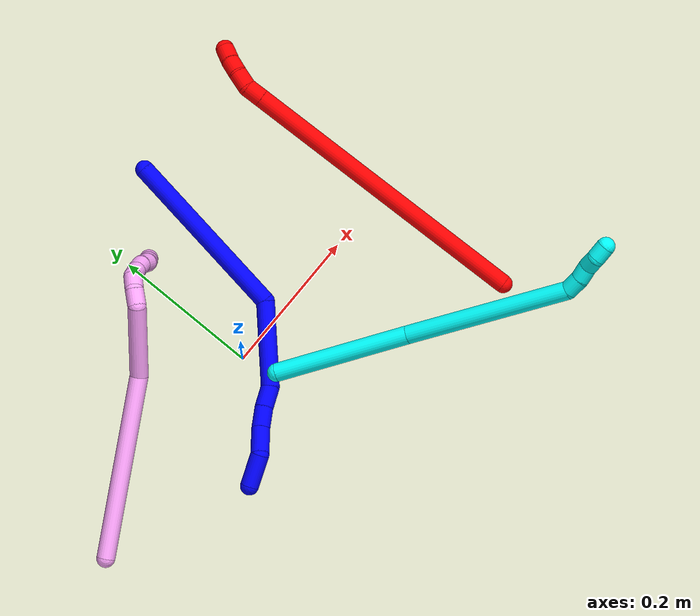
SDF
<sdf version="1.7">
 <world name="default">
  <plugin name="TubeGeneratorPlugin" filename="libtube_generator_plugin.so"/>
  <model name="photoneo_s_sensor">
   <static>1</static>
   <pose>0 0 2 1.57079 1.57079 3.14159</pose>
   <link name="link">
    <inertial><mass>0.1</mass></inertial>
    <sensor name="sensor" type="depth">
     <update_rate>30</update_rate>
     <camera>
      <horizontal_fov>1.22</horizontal_fov>
      <image><width>1920</width><height>1200</height><format>B8G8R8</format></image>
      <clip><near>0.1</near><far>4</far></clip>
      <depth_camera><output>points</output></depth_camera>
     </camera>
     <plugin name="camera_plugin" filename="libgazebo_ros_depth_camera.so">
      <baseline>0.2</baseline>
      <alwaysOn>1</alwaysOn>
      <updateRate>0.0</updateRate>
      <cameraName>camera_ir</cameraName>
      <imageTopicName>/camera/color/image_raw</imageTopicName>
      <cameraInfoTopicName>/camera/color/camera_info</cameraInfoTopicName>
      <depthImageTopicName>/camera/depth/image_raw</depthImageTopicName>
      <depthImageCameraInfoTopicName>/camera/depth/camera_info</depthImageCameraInfoTopicName>
      <pointCloudTopicName>/camera/depth/points</pointCloudTopicName>
      <frameName>fr_optical</frameName>
      <pointCloudCutoff>0.1</pointCloudCutoff>
      <pointCloudCutoffMax>2.0</pointCloudCutoffMax>
      <distortionK1>0</distortionK1>
      <distortionK2>0</distortionK2>
      <distortionK3>0</distortionK3>
      <distortionT1>0</distortionT1>
      <distortionT2>0</distortionT2>
      <CxPrime>0</CxPrime>
      <Cx>0</Cx>
      <Cy>0</Cy>
      <focalLength>0</focalLength>
      <hackBaseline>0</hackBaseline>
     </plugin>
    </sensor>
   </link>
  </model>
  <gravity>0 0 -9.8</gravity>
  <magnetic_field>6e-06 2.3e-05 -4.2e-05</magnetic_field>
  <atmosphere type="adiabatic"/>
  <physics name="default_physics" default="0" type="ode">
   <max_step_size>0.003</max_step_size>
   <real_time_factor>1</real_time_factor>
   <real_time_update_rate>1000</real_time_update_rate>
   <max_contacts>10000</max_contacts>
   <ode>
    <solver>
     <type>quick</type>
     <iters>100</iters>
     <sor>1.3</sor>
     <use_dynamic_moi_rescaling>0</use_dynamic_moi_rescaling>
    </solver>
    <constraints>
     <contact_max_correcting_vel>0</contact_max_correcting_vel>
     <contact_surface_layer>0.001</contact_surface_layer>
     <cfm>0</cfm>
     <erp>0.2</erp>
    </constraints>
   </ode>
  </physics>
  <scene><ambient>0.4 0.4 0.4 1</ambient><background>0.7 0.7 0.7 1</background><shadows>0</shadows></scene>
  <audio><device>default</device></audio>
  <spherical_coordinates>
   <surface_model>EARTH_WGS84</surface_model>
   <latitude_deg>0</latitude_deg>
   <longitude_deg>0</longitude_deg>
   <elevation>0</elevation>
   <heading_deg>0</heading_deg>
  </spherical_coordinates>
  <model name="bin">
   <static>1</static>
   <link name="bottom">
    <collision name="collision-bottom">
     <pose>0 0 -0.01 0 -0 0</pose>
     <geometry><box><size>0.8 0.6 0.02</size></box></geometry>
     <surface>
      <friction><ode><mu>100</mu><mu2>100</mu2></ode></friction>
      <contact><collide_bitmask>65535</collide_bitmask></contact>
     </surface>
    </collision>
   </link>
   <link name="west_wall">
    <collision name="collision-west_wall">
     <pose>-0.41 0 0.1 0 -0 0</pose>
     <geometry><box><size>0.02 0.6 0.2</size></box></geometry>
     <surface>
      <friction><ode><mu>100</mu><mu2>100</mu2></ode></friction>
      <contact><collide_bitmask>65535</collide_bitmask></contact>
     </surface>
    </collision>
   </link>
   <link name="east_wall">
    <collision name="collision-east_wall">
     <pose>0.41 0 0.1 0 -0 0</pose>
     <geometry><box><size>0.02 0.6 0.2</size></box></geometry>
     <surface>
      <friction><ode><mu>100</mu><mu2>100</mu2></ode></friction>
      <contact><collide_bitmask>65535</collide_bitmask></contact>
     </surface>
    </collision>
   </link>
   <link name="south_wall">
    <collision name="collision-south_wall">
     <pose>0 -0.31 0.1 0 -0 0</pose>
     <geometry><box><size>0.8 0.02 0.2</size></box></geometry>
     <surface>
      <friction><ode><mu>100</mu><mu2>100</mu2></ode></friction>
      <contact><collide_bitmask>65535</collide_bitmask></contact>
     </surface>
    </collision>
   </link>
   <link name="north_wall">
    <collision name="collision-north_wall">
     <pose>0 0.31 0.1 0 -0 0</pose>
     <geometry><box><size>0.8 0.02 0.2</size></box></geometry>
     <surface>
      <friction><ode><mu>100</mu><mu2>100</mu2></ode></friction>
      <contact><collide_bitmask>65535</collide_bitmask></contact>
     </surface>
    </collision>
   </link>
  </model>
  <model name="1">
   <static>0</static>
   <link name="1">
    <collision name="collision-cylinder-e_1_1_4">
     <pose>-0.022625 -0.108486 0.049113 1.14569 -0.187756 -0.121309</pose>
     <geometry><cylinder><radius>0.0125</radius><length>0.24243</length></cylinder></geometry>
     <surface>
      <friction><ode><mu>1.16</mu><mu2>1.16</mu2><slip1>0</slip1><slip2>0</slip2></ode></friction>
      <contact><ode><kp>1e+06</kp><kd>1</kd><max_vel>0</max_vel><min_depth>0.001</min_depth></ode></contact>
     </surface>
    </collision>
    <visual name="visual-cylinder-e_1_1_4">
     <pose>-0.022625 -0.108486 0.049113 1.14569 -0.187756 -0.121309</pose>
     <geometry><cylinder><radius>0.0125</radius><length>0.24243</length></cylinder></geometry>
     <material><ambient>0 0 1 1</ambient></material>
    </visual>
    <collision name="collision-cylinder-e_2_4_5">
     <pose>-0.083717 -0.259933 0.09606 1.62115 -0.729615 -0.763826</pose>
     <geometry><cylinder><radius>0.0125</radius><length>0.115413</length></cylinder></geometry>
     <surface>
      <friction><ode><mu>1.16</mu><mu2>1.16</mu2><slip1>0</slip1><slip2>0</slip2></ode></friction>
      <contact><ode><kp>1e+06</kp><kd>1</kd><max_vel>0</max_vel><min_depth>0.001</min_depth></ode></contact>
     </surface>
    </collision>
    <visual name="visual-cylinder-e_2_4_5">
     <pose>-0.083717 -0.259933 0.09606 1.62115 -0.729615 -0.763826</pose>
     <geometry><cylinder><radius>0.0125</radius><length>0.115413</length></cylinder></geometry>
     <material><ambient>0 0 1 1</ambient></material>
    </visual>
    <collision name="collision-cylinder-e_3_5_6">
     <pose>-0.135675 -0.309481 0.092331 1.80391 -1.10579 -1.3258</pose>
     <geometry><cylinder><radius>0.0125</radius><length>0.030189</length></cylinder></geometry>
     <surface>
      <friction><ode><mu>1.16</mu><mu2>1.16</mu2><slip1>0</slip1><slip2>0</slip2></ode></friction>
      <contact><ode><kp>1e+06</kp><kd>1</kd><max_vel>0</max_vel><min_depth>0.001</min_depth></ode></contact>
     </surface>
    </collision>
    <visual name="visual-cylinder-e_3_5_6">
     <pose>-0.135675 -0.309481 0.092331 1.80391 -1.10579 -1.3258</pose>
     <geometry><cylinder><radius>0.0125</radius><length>0.030189</length></cylinder></geometry>
     <material><ambient>0 0 1 1</ambient></material>
    </visual>
    <collision name="collision-cylinder-e_4_6_7">
     <pose>-0.161893 -0.323573 0.091131 1.5224 -1.03739 -0.996222</pose>
     <geometry><cylinder><radius>0.0125</radius><length>0.029559</length></cylinder></geometry>
     <surface>
      <friction><ode><mu>1.16</mu><mu2>1.16</mu2><slip1>0</slip1><slip2>0</slip2></ode></friction>
      <contact><ode><kp>1e+06</kp><kd>1</kd><max_vel>0</max_vel><min_depth>0.001</min_depth></ode></contact>
     </surface>
    </collision>
    <visual name="visual-cylinder-e_4_6_7">
     <pose>-0.161893 -0.323573 0.091131 1.5224 -1.03739 -0.996222</pose>
     <geometry><cylinder><radius>0.0125</radius><length>0.029559</length></cylinder></geometry>
     <material><ambient>0 0 1 1</ambient></material>
    </visual>
    <collision name="collision-cylinder-e_5_7_8">
     <pose>-0.190472 -0.340609 0.095177 1.20209 -0.998315 -0.715498</pose>
     <geometry><cylinder><radius>0.0125</radius><length>0.03772</length></cylinder></geometry>
     <surface>
      <friction><ode><mu>1.16</mu><mu2>1.16</mu2><slip1>0</slip1><slip2>0</slip2></ode></friction>
      <contact><ode><kp>1e+06</kp><kd>1</kd><max_vel>0</max_vel><min_depth>0.001</min_depth></ode></contact>
     </surface>
    </collision>
    <visual name="visual-cylinder-e_5_7_8">
     <pose>-0.190472 -0.340609 0.095177 1.20209 -0.998315 -0.715498</pose>
     <geometry><cylinder><radius>0.0125</radius><length>0.03772</length></cylinder></geometry>
     <material><ambient>0 0 1 1</ambient></material>
    </visual>
    <collision name="collision-cylinder-e_6_8_2">
     <pose>-0.22247 -0.362644 0.08979 2.19828 -0.807467 -1.39446</pose>
     <geometry><cylinder><radius>0.0125</radius><length>0.044689</length></cylinder></geometry>
     <surface>
      <friction><ode><mu>1.16</mu><mu2>1.16</mu2><slip1>0</slip1><slip2>0</slip2></ode></friction>
      <contact><ode><kp>1e+06</kp><kd>1</kd><max_vel>0</max_vel><min_depth>0.001</min_depth></ode></contact>
     </surface>
    </collision>
    <visual name="visual-cylinder-e_6_8_2">
     <pose>-0.22247 -0.362644 0.08979 2.19828 -0.807467 -1.39446</pose>
     <geometry><cylinder><radius>0.0125</radius><length>0.044689</length></cylinder></geometry>
     <material><ambient>0 0 1 1</ambient></material>
    </visual>
    <collision name="collision-sphere-2">
     <pose>-0.238614 -0.375149 0.080721 0 -0 0</pose>
     <geometry><sphere><radius>0.0125</radius></sphere></geometry>
     <surface>
      <friction><ode><mu>1.16</mu><mu2>1.16</mu2><slip1>0</slip1><slip2>0</slip2></ode></friction>
      <contact><ode><kp>1e+06</kp><kd>1</kd><max_vel>0</max_vel><min_depth>0.001</min_depth></ode></contact>
     </surface>
    </collision>
    <visual name="visual-sphere-2">
     <pose>-0.238614 -0.375149 0.080721 0 -0 0</pose>
     <geometry><sphere><radius>0.0125</radius></sphere></geometry>
     <material><ambient>0 0 1 1</ambient></material>
    </visual>
    <collision name="collision-sphere-4">
     <pose>-0.045251 -0.216971 0.098225 0 -0 0</pose>
     <geometry><sphere><radius>0.0125</radius></sphere></geometry>
     <surface>
      <friction><ode><mu>1.16</mu><mu2>1.16</mu2><slip1>0</slip1><slip2>0</slip2></ode></friction>
      <contact><ode><kp>1e+06</kp><kd>1</kd><max_vel>0</max_vel><min_depth>0.001</min_depth></ode></contact>
     </surface>
    </collision>
    <visual name="visual-sphere-4">
     <pose>-0.045251 -0.216971 0.098225 0 -0 0</pose>
     <geometry><sphere><radius>0.0125</radius></sphere></geometry>
     <material><ambient>0 0 1 1</ambient></material>
    </visual>
    <collision name="collision-sphere-1">
     <geometry><sphere><radius>0.0125</radius></sphere></geometry>
     <surface>
      <friction><ode><mu>1.16</mu><mu2>1.16</mu2><slip1>0</slip1><slip2>0</slip2></ode></friction>
      <contact><ode><kp>1e+06</kp><kd>1</kd><max_vel>0</max_vel><min_depth>0.001</min_depth></ode></contact>
     </surface>
    </collision>
    <visual name="visual-sphere-1">
     <geometry><sphere><radius>0.0125</radius></sphere></geometry>
     <material><ambient>0 0 1 1</ambient></material>
    </visual>
    <collision name="collision-sphere-8">
     <pose>-0.206325 -0.350139 0.098859 0 -0 0</pose>
     <geometry><sphere><radius>0.0125</radius></sphere></geometry>
     <surface>
      <friction><ode><mu>1.16</mu><mu2>1.16</mu2><slip1>0</slip1><slip2>0</slip2></ode></friction>
      <contact><ode><kp>1e+06</kp><kd>1</kd><max_vel>0</max_vel><min_depth>0.001</min_depth></ode></contact>
     </surface>
    </collision>
    <visual name="visual-sphere-8">
     <pose>-0.206325 -0.350139 0.098859 0 -0 0</pose>
     <geometry><sphere><radius>0.0125</radius></sphere></geometry>
     <material><ambient>0 0 1 1</ambient></material>
    </visual>
    <collision name="collision-sphere-5">
     <pose>-0.122183 -0.302895 0.093895 0 -0 0</pose>
     <geometry><sphere><radius>0.0125</radius></sphere></geometry>
     <surface>
      <friction><ode><mu>1.16</mu><mu2>1.16</mu2><slip1>0</slip1><slip2>0</slip2></ode></friction>
      <contact><ode><kp>1e+06</kp><kd>1</kd><max_vel>0</max_vel><min_depth>0.001</min_depth></ode></contact>
     </surface>
    </collision>
    <visual name="visual-sphere-5">
     <pose>-0.122183 -0.302895 0.093895 0 -0 0</pose>
     <geometry><sphere><radius>0.0125</radius></sphere></geometry>
     <material><ambient>0 0 1 1</ambient></material>
    </visual>
    <collision name="collision-sphere-6">
     <pose>-0.149166 -0.316066 0.090768 0 -0 0</pose>
     <geometry><sphere><radius>0.0125</radius></sphere></geometry>
     <surface>
      <friction><ode><mu>1.16</mu><mu2>1.16</mu2><slip1>0</slip1><slip2>0</slip2></ode></friction>
      <contact><ode><kp>1e+06</kp><kd>1</kd><max_vel>0</max_vel><min_depth>0.001</min_depth></ode></contact>
     </surface>
    </collision>
    <visual name="visual-sphere-6">
     <pose>-0.149166 -0.316066 0.090768 0 -0 0</pose>
     <geometry><sphere><radius>0.0125</radius></sphere></geometry>
     <material><ambient>0 0 1 1</ambient></material>
    </visual>
    <collision name="collision-sphere-7">
     <pose>-0.174619 -0.331079 0.091495 0 -0 0</pose>
     <geometry><sphere><radius>0.0125</radius></sphere></geometry>
     <surface>
      <friction><ode><mu>1.16</mu><mu2>1.16</mu2><slip1>0</slip1><slip2>0</slip2></ode></friction>
      <contact><ode><kp>1e+06</kp><kd>1</kd><max_vel>0</max_vel><min_depth>0.001</min_depth></ode></contact>
     </surface>
    </collision>
    <visual name="visual-sphere-7">
     <pose>-0.174619 -0.331079 0.091495 0 -0 0</pose>
     <geometry><sphere><radius>0.0125</radius></sphere></geometry>
     <material><ambient>0 0 1 1</ambient></material>
    </visual>
    <inertial>
     <pose>-0.08231 -0.208522 0.072154 0 -0 0</pose>
     <mass>0.5</mass>
     <inertia>
      <ixx>0.001003</ixx>
      <ixy>0</ixy>
      <ixz>0</ixz>
      <iyy>0.000334</iyy>
      <iyz>0</iyz>
      <izz>0.001517</izz>
     </inertia>
    </inertial>
   </link>
   <pose>0.112613 0.265127 0.011728 0.50761 0.488706 0.061072</pose>
  </model>
  <model name="2">
   <static>0</static>
   <link name="2">
    <collision name="collision-cylinder-e_1_1_4">
     <pose>0.078316 0.119963 0.145941 -0.68801 0.392986 -0.142386</pose>
     <geometry><cylinder><radius>0.0125</radius><length>0.409015</length></cylinder></geometry>
     <surface>
      <friction><ode><mu>1.16</mu><mu2>1.16</mu2><slip1>0</slip1><slip2>0</slip2></ode></friction>
      <contact><ode><kp>1e+06</kp><kd>1</kd><max_vel>0</max_vel><min_depth>0.001</min_depth></ode></contact>
     </surface>
    </collision>
    <visual name="visual-cylinder-e_1_1_4">
     <pose>0.078316 0.119963 0.145941 -0.68801 0.392986 -0.142386</pose>
     <geometry><cylinder><radius>0.0125</radius><length>0.409015</length></cylinder></geometry>
     <material><ambient>1 0 0 1</ambient></material>
    </visual>
    <collision name="collision-cylinder-e_2_4_5">
     <pose>0.161136 0.246839 0.3004 -0.681717 0.389623 -0.139748</pose>
     <geometry><cylinder><radius>0.0125</radius><length>0.023717</length></cylinder></geometry>
     <surface>
      <friction><ode><mu>1.16</mu><mu2>1.16</mu2><slip1>0</slip1><slip2>0</slip2></ode></friction>
      <contact><ode><kp>1e+06</kp><kd>1</kd><max_vel>0</max_vel><min_depth>0.001</min_depth></ode></contact>
     </surface>
    </collision>
    <visual name="visual-cylinder-e_2_4_5">
     <pose>0.161136 0.246839 0.3004 -0.681717 0.389623 -0.139748</pose>
     <geometry><cylinder><radius>0.0125</radius><length>0.023717</length></cylinder></geometry>
     <material><ambient>1 0 0 1</ambient></material>
    </visual>
    <collision name="collision-cylinder-e_3_5_6">
     <pose>0.166489 0.263468 0.315583 -0.969621 0.071901 -0.037885</pose>
     <geometry><cylinder><radius>0.0125</radius><length>0.023628</length></cylinder></geometry>
     <surface>
      <friction><ode><mu>1.16</mu><mu2>1.16</mu2><slip1>0</slip1><slip2>0</slip2></ode></friction>
      <contact><ode><kp>1e+06</kp><kd>1</kd><max_vel>0</max_vel><min_depth>0.001</min_depth></ode></contact>
     </surface>
    </collision>
    <visual name="visual-cylinder-e_3_5_6">
     <pose>0.166489 0.263468 0.315583 -0.969621 0.071901 -0.037885</pose>
     <geometry><cylinder><radius>0.0125</radius><length>0.023628</length></cylinder></geometry>
     <material><ambient>1 0 0 1</ambient></material>
    </visual>
    <collision name="collision-cylinder-e_4_6_7">
     <pose>0.165455 0.281853 0.328454 -0.949323 -0.174854 0.090016</pose>
     <geometry><cylinder><radius>0.0125</radius><length>0.02165</length></cylinder></geometry>
     <surface>
      <friction><ode><mu>1.16</mu><mu2>1.16</mu2><slip1>0</slip1><slip2>0</slip2></ode></friction>
      <contact><ode><kp>1e+06</kp><kd>1</kd><max_vel>0</max_vel><min_depth>0.001</min_depth></ode></contact>
     </surface>
    </collision>
    <visual name="visual-cylinder-e_4_6_7">
     <pose>0.165455 0.281853 0.328454 -0.949323 -0.174854 0.090016</pose>
     <geometry><cylinder><radius>0.0125</radius><length>0.02165</length></cylinder></geometry>
     <material><ambient>1 0 0 1</ambient></material>
    </visual>
    <collision name="collision-cylinder-e_5_7_2">
     <pose>0.160349 0.29955 0.340041 -1.0335 -0.297424 0.16986</pose>
     <geometry><cylinder><radius>0.0125</radius><length>0.02199</length></cylinder></geometry>
     <surface>
      <friction><ode><mu>1.16</mu><mu2>1.16</mu2><slip1>0</slip1><slip2>0</slip2></ode></friction>
      <contact><ode><kp>1e+06</kp><kd>1</kd><max_vel>0</max_vel><min_depth>0.001</min_depth></ode></contact>
     </surface>
    </collision>
    <visual name="visual-cylinder-e_5_7_2">
     <pose>0.160349 0.29955 0.340041 -1.0335 -0.297424 0.16986</pose>
     <geometry><cylinder><radius>0.0125</radius><length>0.02199</length></cylinder></geometry>
     <material><ambient>1 0 0 1</ambient></material>
    </visual>
    <collision name="collision-sphere-2">
     <pose>0.157127 0.308581 0.345422 0 -0 0</pose>
     <geometry><sphere><radius>0.0125</radius></sphere></geometry>
     <surface>
      <friction><ode><mu>1.16</mu><mu2>1.16</mu2><slip1>0</slip1><slip2>0</slip2></ode></friction>
      <contact><ode><kp>1e+06</kp><kd>1</kd><max_vel>0</max_vel><min_depth>0.001</min_depth></ode></contact>
     </surface>
    </collision>
    <visual name="visual-sphere-2">
     <pose>0.157127 0.308581 0.345422 0 -0 0</pose>
     <geometry><sphere><radius>0.0125</radius></sphere></geometry>
     <material><ambient>1 0 0 1</ambient></material>
    </visual>
    <collision name="collision-sphere-7">
     <pose>0.163571 0.290519 0.334661 0 -0 0</pose>
     <geometry><sphere><radius>0.0125</radius></sphere></geometry>
     <surface>
      <friction><ode><mu>1.16</mu><mu2>1.16</mu2><slip1>0</slip1><slip2>0</slip2></ode></friction>
      <contact><ode><kp>1e+06</kp><kd>1</kd><max_vel>0</max_vel><min_depth>0.001</min_depth></ode></contact>
     </surface>
    </collision>
    <visual name="visual-sphere-7">
     <pose>0.163571 0.290519 0.334661 0 -0 0</pose>
     <geometry><sphere><radius>0.0125</radius></sphere></geometry>
     <material><ambient>1 0 0 1</ambient></material>
    </visual>
    <collision name="collision-sphere-6">
     <pose>0.167338 0.273186 0.322248 0 -0 0</pose>
     <geometry><sphere><radius>0.0125</radius></sphere></geometry>
     <surface>
      <friction><ode><mu>1.16</mu><mu2>1.16</mu2><slip1>0</slip1><slip2>0</slip2></ode></friction>
      <contact><ode><kp>1e+06</kp><kd>1</kd><max_vel>0</max_vel><min_depth>0.001</min_depth></ode></contact>
     </surface>
    </collision>
    <visual name="visual-sphere-6">
     <pose>0.167338 0.273186 0.322248 0 -0 0</pose>
     <geometry><sphere><radius>0.0125</radius></sphere></geometry>
     <material><ambient>1 0 0 1</ambient></material>
    </visual>
    <collision name="collision-sphere-5">
     <pose>0.16564 0.253751 0.308918 0 -0 0</pose>
     <geometry><sphere><radius>0.0125</radius></sphere></geometry>
     <surface>
      <friction><ode><mu>1.16</mu><mu2>1.16</mu2><slip1>0</slip1><slip2>0</slip2></ode></friction>
      <contact><ode><kp>1e+06</kp><kd>1</kd><max_vel>0</max_vel><min_depth>0.001</min_depth></ode></contact>
     </surface>
    </collision>
    <visual name="visual-sphere-5">
     <pose>0.16564 0.253751 0.308918 0 -0 0</pose>
     <geometry><sphere><radius>0.0125</radius></sphere></geometry>
     <material><ambient>1 0 0 1</ambient></material>
    </visual>
    <collision name="collision-sphere-1">
     <geometry><sphere><radius>0.0125</radius></sphere></geometry>
     <surface>
      <friction><ode><mu>1.16</mu><mu2>1.16</mu2><slip1>0</slip1><slip2>0</slip2></ode></friction>
      <contact><ode><kp>1e+06</kp><kd>1</kd><max_vel>0</max_vel><min_depth>0.001</min_depth></ode></contact>
     </surface>
    </collision>
    <visual name="visual-sphere-1">
     <geometry><sphere><radius>0.0125</radius></sphere></geometry>
     <material><ambient>1 0 0 1</ambient></material>
    </visual>
    <collision name="collision-sphere-4">
     <pose>0.156632 0.239926 0.291883 0 -0 0</pose>
     <geometry><sphere><radius>0.0125</radius></sphere></geometry>
     <surface>
      <friction><ode><mu>1.16</mu><mu2>1.16</mu2><slip1>0</slip1><slip2>0</slip2></ode></friction>
      <contact><ode><kp>1e+06</kp><kd>1</kd><max_vel>0</max_vel><min_depth>0.001</min_depth></ode></contact>
     </surface>
    </collision>
    <visual name="visual-sphere-4">
     <pose>0.156632 0.239926 0.291883 0 -0 0</pose>
     <geometry><sphere><radius>0.0125</radius></sphere></geometry>
     <material><ambient>1 0 0 1</ambient></material>
    </visual>
    <inertial>
     <pose>0.093792 0.147671 0.177724 0 -0 0</pose>
     <mass>0.5</mass>
     <inertia>
      <ixx>0.004499</ixx>
      <ixy>0</ixy>
      <ixz>0</ixz>
      <iyy>0.003849</iyy>
      <iyz>0</iyz>
      <izz>-0.005523</izz>
     </inertia>
    </inertial>
   </link>
   <pose>0.299308 -0.205978 0.012246 3.09335 -1.20713 2.28841</pose>
  </model>
  <model name="3">
   <static>0</static>
   <link name="3">
    <collision name="collision-cylinder-e_1_1_4">
     <pose>0.022918 0.012886 0.089622 -0.142801 0.247907 -0.017822</pose>
     <geometry><cylinder><radius>0.0125</radius><length>0.186798</length></cylinder></geometry>
     <surface>
      <friction><ode><mu>1.16</mu><mu2>1.16</mu2><slip1>0</slip1><slip2>0</slip2></ode></friction>
      <contact><ode><kp>1e+06</kp><kd>1</kd><max_vel>0</max_vel><min_depth>0.001</min_depth></ode></contact>
     </surface>
    </collision>
    <visual name="visual-cylinder-e_1_1_4">
     <pose>0.022918 0.012886 0.089622 -0.142801 0.247907 -0.017822</pose>
     <geometry><cylinder><radius>0.0125</radius><length>0.186798</length></cylinder></geometry>
     <material><ambient>0.003922 1 0.996078 1</ambient></material>
    </visual>
    <collision name="collision-cylinder-e_2_4_5">
     <pose>0.08208 0.03314 0.287779 -0.067789 0.321607 -0.011</pose>
     <geometry><cylinder><radius>0.0125</radius><length>0.229326</length></cylinder></geometry>
     <surface>
      <friction><ode><mu>1.16</mu><mu2>1.16</mu2><slip1>0</slip1><slip2>0</slip2></ode></friction>
      <contact><ode><kp>1e+06</kp><kd>1</kd><max_vel>0</max_vel><min_depth>0.001</min_depth></ode></contact>
     </surface>
    </collision>
    <visual name="visual-cylinder-e_2_4_5">
     <pose>0.08208 0.03314 0.287779 -0.067789 0.321607 -0.011</pose>
     <geometry><cylinder><radius>0.0125</radius><length>0.229326</length></cylinder></geometry>
     <material><ambient>0.003922 1 0.996078 1</ambient></material>
    </visual>
    <collision name="collision-cylinder-e_3_5_6">
     <pose>0.118914 0.036467 0.407229 0.354601 0.050624 0.009073</pose>
     <geometry><cylinder><radius>0.0125</radius><length>0.023311</length></cylinder></geometry>
     <surface>
      <friction><ode><mu>1.16</mu><mu2>1.16</mu2><slip1>0</slip1><slip2>0</slip2></ode></friction>
      <contact><ode><kp>1e+06</kp><kd>1</kd><max_vel>0</max_vel><min_depth>0.001</min_depth></ode></contact>
     </surface>
    </collision>
    <visual name="visual-cylinder-e_3_5_6">
     <pose>0.118914 0.036467 0.407229 0.354601 0.050624 0.009073</pose>
     <geometry><cylinder><radius>0.0125</radius><length>0.023311</length></cylinder></geometry>
     <material><ambient>0.003922 1 0.996078 1</ambient></material>
    </visual>
    <collision name="collision-cylinder-e_4_6_7">
     <pose>0.118436 0.027695 0.427051 0.488253 -0.105452 -0.02629</pose>
     <geometry><cylinder><radius>0.0125</radius><length>0.020279</length></cylinder></geometry>
     <surface>
      <friction><ode><mu>1.16</mu><mu2>1.16</mu2><slip1>0</slip1><slip2>0</slip2></ode></friction>
      <contact><ode><kp>1e+06</kp><kd>1</kd><max_vel>0</max_vel><min_depth>0.001</min_depth></ode></contact>
     </surface>
    </collision>
    <visual name="visual-cylinder-e_4_6_7">
     <pose>0.118436 0.027695 0.427051 0.488253 -0.105452 -0.02629</pose>
     <geometry><cylinder><radius>0.0125</radius><length>0.020279</length></cylinder></geometry>
     <material><ambient>0.003922 1 0.996078 1</ambient></material>
    </visual>
    <collision name="collision-cylinder-e_5_7_8">
     <pose>0.119926 0.017549 0.444051 0.589672 0.256699 0.078347</pose>
     <geometry><cylinder><radius>0.0125</radius><length>0.020139</length></cylinder></geometry>
     <surface>
      <friction><ode><mu>1.16</mu><mu2>1.16</mu2><slip1>0</slip1><slip2>0</slip2></ode></friction>
      <contact><ode><kp>1e+06</kp><kd>1</kd><max_vel>0</max_vel><min_depth>0.001</min_depth></ode></contact>
     </surface>
    </collision>
    <visual name="visual-cylinder-e_5_7_8">
     <pose>0.119926 0.017549 0.444051 0.589672 0.256699 0.078347</pose>
     <geometry><cylinder><radius>0.0125</radius><length>0.020139</length></cylinder></geometry>
     <material><ambient>0.003922 1 0.996078 1</ambient></material>
    </visual>
    <collision name="collision-cylinder-e_6_8_2">
     <pose>0.121162 0.009116 0.461665 0.307 -0.131434 -0.020364</pose>
     <geometry><cylinder><radius>0.0125</radius><length>0.020145</length></cylinder></geometry>
     <surface>
      <friction><ode><mu>1.16</mu><mu2>1.16</mu2><slip1>0</slip1><slip2>0</slip2></ode></friction>
      <contact><ode><kp>1e+06</kp><kd>1</kd><max_vel>0</max_vel><min_depth>0.001</min_depth></ode></contact>
     </surface>
    </collision>
    <visual name="visual-cylinder-e_6_8_2">
     <pose>0.121162 0.009116 0.461665 0.307 -0.131434 -0.020364</pose>
     <geometry><cylinder><radius>0.0125</radius><length>0.020145</length></cylinder></geometry>
     <material><ambient>0.003922 1 0.996078 1</ambient></material>
    </visual>
    <collision name="collision-sphere-2">
     <pose>0.119842 0.006098 0.471184 0 -0 0</pose>
     <geometry><sphere><radius>0.0125</radius></sphere></geometry>
     <surface>
      <friction><ode><mu>1.16</mu><mu2>1.16</mu2><slip1>0</slip1><slip2>0</slip2></ode></friction>
      <contact><ode><kp>1e+06</kp><kd>1</kd><max_vel>0</max_vel><min_depth>0.001</min_depth></ode></contact>
     </surface>
    </collision>
    <visual name="visual-sphere-2">
     <pose>0.119842 0.006098 0.471184 0 -0 0</pose>
     <geometry><sphere><radius>0.0125</radius></sphere></geometry>
     <material><ambient>0.003922 1 0.996078 1</ambient></material>
    </visual>
    <collision name="collision-sphere-4">
     <pose>0.045836 0.025772 0.179244 0 -0 0</pose>
     <geometry><sphere><radius>0.0125</radius></sphere></geometry>
     <surface>
      <friction><ode><mu>1.16</mu><mu2>1.16</mu2><slip1>0</slip1><slip2>0</slip2></ode></friction>
      <contact><ode><kp>1e+06</kp><kd>1</kd><max_vel>0</max_vel><min_depth>0.001</min_depth></ode></contact>
     </surface>
    </collision>
    <visual name="visual-sphere-4">
     <pose>0.045836 0.025772 0.179244 0 -0 0</pose>
     <geometry><sphere><radius>0.0125</radius></sphere></geometry>
     <material><ambient>0.003922 1 0.996078 1</ambient></material>
    </visual>
    <collision name="collision-sphere-1">
     <geometry><sphere><radius>0.0125</radius></sphere></geometry>
     <surface>
      <friction><ode><mu>1.16</mu><mu2>1.16</mu2><slip1>0</slip1><slip2>0</slip2></ode></friction>
      <contact><ode><kp>1e+06</kp><kd>1</kd><max_vel>0</max_vel><min_depth>0.001</min_depth></ode></contact>
     </surface>
    </collision>
    <visual name="visual-sphere-1">
     <geometry><sphere><radius>0.0125</radius></sphere></geometry>
     <material><ambient>0.003922 1 0.996078 1</ambient></material>
    </visual>
    <collision name="collision-sphere-8">
     <pose>0.122482 0.012133 0.452146 0 -0 0</pose>
     <geometry><sphere><radius>0.0125</radius></sphere></geometry>
     <surface>
      <friction><ode><mu>1.16</mu><mu2>1.16</mu2><slip1>0</slip1><slip2>0</slip2></ode></friction>
      <contact><ode><kp>1e+06</kp><kd>1</kd><max_vel>0</max_vel><min_depth>0.001</min_depth></ode></contact>
     </surface>
    </collision>
    <visual name="visual-sphere-8">
     <pose>0.122482 0.012133 0.452146 0 -0 0</pose>
     <geometry><sphere><radius>0.0125</radius></sphere></geometry>
     <material><ambient>0.003922 1 0.996078 1</ambient></material>
    </visual>
    <collision name="collision-sphere-5">
     <pose>0.118324 0.040509 0.396313 0 -0 0</pose>
     <geometry><sphere><radius>0.0125</radius></sphere></geometry>
     <surface>
      <friction><ode><mu>1.16</mu><mu2>1.16</mu2><slip1>0</slip1><slip2>0</slip2></ode></friction>
      <contact><ode><kp>1e+06</kp><kd>1</kd><max_vel>0</max_vel><min_depth>0.001</min_depth></ode></contact>
     </surface>
    </collision>
    <visual name="visual-sphere-5">
     <pose>0.118324 0.040509 0.396313 0 -0 0</pose>
     <geometry><sphere><radius>0.0125</radius></sphere></geometry>
     <material><ambient>0.003922 1 0.996078 1</ambient></material>
    </visual>
    <collision name="collision-sphere-6">
     <pose>0.119503 0.032425 0.418146 0 -0 0</pose>
     <geometry><sphere><radius>0.0125</radius></sphere></geometry>
     <surface>
      <friction><ode><mu>1.16</mu><mu2>1.16</mu2><slip1>0</slip1><slip2>0</slip2></ode></friction>
      <contact><ode><kp>1e+06</kp><kd>1</kd><max_vel>0</max_vel><min_depth>0.001</min_depth></ode></contact>
     </surface>
    </collision>
    <visual name="visual-sphere-6">
     <pose>0.119503 0.032425 0.418146 0 -0 0</pose>
     <geometry><sphere><radius>0.0125</radius></sphere></geometry>
     <material><ambient>0.003922 1 0.996078 1</ambient></material>
    </visual>
    <collision name="collision-sphere-7">
     <pose>0.117369 0.022966 0.435956 0 -0 0</pose>
     <geometry><sphere><radius>0.0125</radius></sphere></geometry>
     <surface>
      <friction><ode><mu>1.16</mu><mu2>1.16</mu2><slip1>0</slip1><slip2>0</slip2></ode></friction>
      <contact><ode><kp>1e+06</kp><kd>1</kd><max_vel>0</max_vel><min_depth>0.001</min_depth></ode></contact>
     </surface>
    </collision>
    <visual name="visual-sphere-7">
     <pose>0.117369 0.022966 0.435956 0 -0 0</pose>
     <geometry><sphere><radius>0.0125</radius></sphere></geometry>
     <material><ambient>0.003922 1 0.996078 1</ambient></material>
    </visual>
    <inertial>
     <pose>0.066268 0.023912 0.238266 0 -0 0</pose>
     <mass>0.5</mass>
     <inertia>
      <ixx>0.001491</ixx>
      <ixy>0</ixy>
      <ixz>0</ixz>
      <iyy>0.001543</iyy>
      <iyz>0</iyz>
      <izz>-0.000557</izz>
     </inertia>
    </inertial>
   </link>
   <pose>0.011495 -0.048867 0.034807 -1.27515 -0.639494 -2.08814</pose>
  </model>
  <model name="4">
   <static>0</static>
   <link name="4">
    <collision name="collision-cylinder-e_1_1_4">
     <pose>0.105868 0.059607 0.024177 -1.18546 1.02482 -0.724318</pose>
     <geometry><cylinder><radius>0.0125</radius><length>0.247754</length></cylinder></geometry>
     <surface>
      <friction><ode><mu>1.16</mu><mu2>1.16</mu2><slip1>0</slip1><slip2>0</slip2></ode></friction>
      <contact><ode><kp>1e+06</kp><kd>1</kd><max_vel>0</max_vel><min_depth>0.001</min_depth></ode></contact>
     </surface>
    </collision>
    <visual name="visual-cylinder-e_1_1_4">
     <pose>0.105868 0.059607 0.024177 -1.18546 1.02482 -0.724318</pose>
     <geometry><cylinder><radius>0.0125</radius><length>0.247754</length></cylinder></geometry>
     <material><ambient>1 0.65098 0.996078 1</ambient></material>
    </visual>
    <collision name="collision-cylinder-e_2_4_5">
     <pose>0.242979 0.147495 0.079781 -0.732766 0.636425 -0.251458</pose>
     <geometry><cylinder><radius>0.0125</radius><length>0.105139</length></cylinder></geometry>
     <surface>
      <friction><ode><mu>1.16</mu><mu2>1.16</mu2><slip1>0</slip1><slip2>0</slip2></ode></friction>
      <contact><ode><kp>1e+06</kp><kd>1</kd><max_vel>0</max_vel><min_depth>0.001</min_depth></ode></contact>
     </surface>
    </collision>
    <visual name="visual-cylinder-e_2_4_5">
     <pose>0.242979 0.147495 0.079781 -0.732766 0.636425 -0.251458</pose>
     <geometry><cylinder><radius>0.0125</radius><length>0.105139</length></cylinder></geometry>
     <material><ambient>1 0.65098 0.996078 1</ambient></material>
    </visual>
    <collision name="collision-cylinder-e_3_5_6">
     <pose>0.2818 0.184425 0.110362 -1.66825 0.717126 -0.783648</pose>
     <geometry><cylinder><radius>0.0125</radius><length>0.023061</length></cylinder></geometry>
     <surface>
      <friction><ode><mu>1.16</mu><mu2>1.16</mu2><slip1>0</slip1><slip2>0</slip2></ode></friction>
      <contact><ode><kp>1e+06</kp><kd>1</kd><max_vel>0</max_vel><min_depth>0.001</min_depth></ode></contact>
     </surface>
    </collision>
    <visual name="visual-cylinder-e_3_5_6">
     <pose>0.2818 0.184425 0.110362 -1.66825 0.717126 -0.783648</pose>
     <geometry><cylinder><radius>0.0125</radius><length>0.023061</length></cylinder></geometry>
     <material><ambient>1 0.65098 0.996078 1</ambient></material>
    </visual>
    <collision name="collision-cylinder-e_4_6_7">
     <pose>0.296174 0.199792 0.104332 -2.22807 0.675228 -1.24061</pose>
     <geometry><cylinder><radius>0.0125</radius><length>0.021742</length></cylinder></geometry>
     <surface>
      <friction><ode><mu>1.16</mu><mu2>1.16</mu2><slip1>0</slip1><slip2>0</slip2></ode></friction>
      <contact><ode><kp>1e+06</kp><kd>1</kd><max_vel>0</max_vel><min_depth>0.001</min_depth></ode></contact>
     </surface>
    </collision>
    <visual name="visual-cylinder-e_4_6_7">
     <pose>0.296174 0.199792 0.104332 -2.22807 0.675228 -1.24061</pose>
     <geometry><cylinder><radius>0.0125</radius><length>0.021742</length></cylinder></geometry>
     <material><ambient>1 0.65098 0.996078 1</ambient></material>
    </visual>
    <collision name="collision-cylinder-e_5_7_8">
     <pose>0.308536 0.207982 0.090852 -2.96599 0.583888 -2.57171</pose>
     <geometry><cylinder><radius>0.0125</radius><length>0.020195</length></cylinder></geometry>
     <surface>
      <friction><ode><mu>1.16</mu><mu2>1.16</mu2><slip1>0</slip1><slip2>0</slip2></ode></friction>
      <contact><ode><kp>1e+06</kp><kd>1</kd><max_vel>0</max_vel><min_depth>0.001</min_depth></ode></contact>
     </surface>
    </collision>
    <visual name="visual-cylinder-e_5_7_8">
     <pose>0.308536 0.207982 0.090852 -2.96599 0.583888 -2.57171</pose>
     <geometry><cylinder><radius>0.0125</radius><length>0.020195</length></cylinder></geometry>
     <material><ambient>1 0.65098 0.996078 1</ambient></material>
    </visual>
    <collision name="collision-cylinder-e_6_8_9">
     <pose>0.320376 0.210257 0.074186 -3.04593 0.641024 -2.85516</pose>
     <geometry><cylinder><radius>0.0125</radius><length>0.020984</length></cylinder></geometry>
     <surface>
      <friction><ode><mu>1.16</mu><mu2>1.16</mu2><slip1>0</slip1><slip2>0</slip2></ode></friction>
      <contact><ode><kp>1e+06</kp><kd>1</kd><max_vel>0</max_vel><min_depth>0.001</min_depth></ode></contact>
     </surface>
    </collision>
    <visual name="visual-cylinder-e_6_8_9">
     <pose>0.320376 0.210257 0.074186 -3.04593 0.641024 -2.85516</pose>
     <geometry><cylinder><radius>0.0125</radius><length>0.020984</length></cylinder></geometry>
     <material><ambient>1 0.65098 0.996078 1</ambient></material>
    </visual>
    <collision name="collision-cylinder-e_7_9_10">
     <pose>0.331445 0.209411 0.056976 2.9572 0.489818 2.43294</pose>
     <geometry><cylinder><radius>0.0125</radius><length>0.02038</length></cylinder></geometry>
     <surface>
      <friction><ode><mu>1.16</mu><mu2>1.16</mu2><slip1>0</slip1><slip2>0</slip2></ode></friction>
      <contact><ode><kp>1e+06</kp><kd>1</kd><max_vel>0</max_vel><min_depth>0.001</min_depth></ode></contact>
     </surface>
    </collision>
    <visual name="visual-cylinder-e_7_9_10">
     <pose>0.331445 0.209411 0.056976 2.9572 0.489818 2.43294</pose>
     <geometry><cylinder><radius>0.0125</radius><length>0.02038</length></cylinder></geometry>
     <material><ambient>1 0.65098 0.996078 1</ambient></material>
    </visual>
    <collision name="collision-cylinder-e_8_10_11">
     <pose>0.33876 0.209013 0.038464 -3.01301 0.252945 -2.20419</pose>
     <geometry><cylinder><radius>0.0125</radius><length>0.020148</length></cylinder></geometry>
     <surface>
      <friction><ode><mu>1.16</mu><mu2>1.16</mu2><slip1>0</slip1><slip2>0</slip2></ode></friction>
      <contact><ode><kp>1e+06</kp><kd>1</kd><max_vel>0</max_vel><min_depth>0.001</min_depth></ode></contact>
     </surface>
    </collision>
    <visual name="visual-cylinder-e_8_10_11">
     <pose>0.33876 0.209013 0.038464 -3.01301 0.252945 -2.20419</pose>
     <geometry><cylinder><radius>0.0125</radius><length>0.020148</length></cylinder></geometry>
     <material><ambient>1 0.65098 0.996078 1</ambient></material>
    </visual>
    <collision name="collision-cylinder-e_9_11_2">
     <pose>0.343677 0.211811 0.018896 -2.98655 0.234806 -1.97682</pose>
     <geometry><cylinder><radius>0.0125</radius><length>0.020596</length></cylinder></geometry>
     <surface>
      <friction><ode><mu>1.16</mu><mu2>1.16</mu2><slip1>0</slip1><slip2>0</slip2></ode></friction>
      <contact><ode><kp>1e+06</kp><kd>1</kd><max_vel>0</max_vel><min_depth>0.001</min_depth></ode></contact>
     </surface>
    </collision>
    <visual name="visual-cylinder-e_9_11_2">
     <pose>0.343677 0.211811 0.018896 -2.98655 0.234806 -1.97682</pose>
     <geometry><cylinder><radius>0.0125</radius><length>0.020596</length></cylinder></geometry>
     <material><ambient>1 0.65098 0.996078 1</ambient></material>
    </visual>
    <collision name="collision-sphere-2">
     <pose>0.346073 0.213357 0.009 0 -0 0</pose>
     <geometry><sphere><radius>0.0125</radius></sphere></geometry>
     <surface>
      <friction><ode><mu>1.16</mu><mu2>1.16</mu2><slip1>0</slip1><slip2>0</slip2></ode></friction>
      <contact><ode><kp>1e+06</kp><kd>1</kd><max_vel>0</max_vel><min_depth>0.001</min_depth></ode></contact>
     </surface>
    </collision>
    <visual name="visual-sphere-2">
     <pose>0.346073 0.213357 0.009 0 -0 0</pose>
     <geometry><sphere><radius>0.0125</radius></sphere></geometry>
     <material><ambient>1 0.65098 0.996078 1</ambient></material>
    </visual>
    <collision name="collision-sphere-11">
     <pose>0.341281 0.210264 0.028791 0 -0 0</pose>
     <geometry><sphere><radius>0.0125</radius></sphere></geometry>
     <surface>
      <friction><ode><mu>1.16</mu><mu2>1.16</mu2><slip1>0</slip1><slip2>0</slip2></ode></friction>
      <contact><ode><kp>1e+06</kp><kd>1</kd><max_vel>0</max_vel><min_depth>0.001</min_depth></ode></contact>
     </surface>
    </collision>
    <visual name="visual-sphere-11">
     <pose>0.341281 0.210264 0.028791 0 -0 0</pose>
     <geometry><sphere><radius>0.0125</radius></sphere></geometry>
     <material><ambient>1 0.65098 0.996078 1</ambient></material>
    </visual>
    <collision name="collision-sphere-10">
     <pose>0.336239 0.207763 0.048136 0 -0 0</pose>
     <geometry><sphere><radius>0.0125</radius></sphere></geometry>
     <surface>
      <friction><ode><mu>1.16</mu><mu2>1.16</mu2><slip1>0</slip1><slip2>0</slip2></ode></friction>
      <contact><ode><kp>1e+06</kp><kd>1</kd><max_vel>0</max_vel><min_depth>0.001</min_depth></ode></contact>
     </surface>
    </collision>
    <visual name="visual-sphere-10">
     <pose>0.336239 0.207763 0.048136 0 -0 0</pose>
     <geometry><sphere><radius>0.0125</radius></sphere></geometry>
     <material><ambient>1 0.65098 0.996078 1</ambient></material>
    </visual>
    <collision name="collision-sphere-9">
     <pose>0.326651 0.21106 0.065816 0 -0 0</pose>
     <geometry><sphere><radius>0.0125</radius></sphere></geometry>
     <surface>
      <friction><ode><mu>1.16</mu><mu2>1.16</mu2><slip1>0</slip1><slip2>0</slip2></ode></friction>
      <contact><ode><kp>1e+06</kp><kd>1</kd><max_vel>0</max_vel><min_depth>0.001</min_depth></ode></contact>
     </surface>
    </collision>
    <visual name="visual-sphere-9">
     <pose>0.326651 0.21106 0.065816 0 -0 0</pose>
     <geometry><sphere><radius>0.0125</radius></sphere></geometry>
     <material><ambient>1 0.65098 0.996078 1</ambient></material>
    </visual>
    <collision name="collision-sphere-4">
     <pose>0.211735 0.119214 0.048355 0 -0 0</pose>
     <geometry><sphere><radius>0.0125</radius></sphere></geometry>
     <surface>
      <friction><ode><mu>1.16</mu><mu2>1.16</mu2><slip1>0</slip1><slip2>0</slip2></ode></friction>
      <contact><ode><kp>1e+06</kp><kd>1</kd><max_vel>0</max_vel><min_depth>0.001</min_depth></ode></contact>
     </surface>
    </collision>
    <visual name="visual-sphere-4">
     <pose>0.211735 0.119214 0.048355 0 -0 0</pose>
     <geometry><sphere><radius>0.0125</radius></sphere></geometry>
     <material><ambient>1 0.65098 0.996078 1</ambient></material>
    </visual>
    <collision name="collision-sphere-1">
     <geometry><sphere><radius>0.0125</radius></sphere></geometry>
     <surface>
      <friction><ode><mu>1.16</mu><mu2>1.16</mu2><slip1>0</slip1><slip2>0</slip2></ode></friction>
      <contact><ode><kp>1e+06</kp><kd>1</kd><max_vel>0</max_vel><min_depth>0.001</min_depth></ode></contact>
     </surface>
    </collision>
    <visual name="visual-sphere-1">
     <geometry><sphere><radius>0.0125</radius></sphere></geometry>
     <material><ambient>1 0.65098 0.996078 1</ambient></material>
    </visual>
    <collision name="collision-sphere-8">
     <pose>0.314102 0.209454 0.082557 0 -0 0</pose>
     <geometry><sphere><radius>0.0125</radius></sphere></geometry>
     <surface>
      <friction><ode><mu>1.16</mu><mu2>1.16</mu2><slip1>0</slip1><slip2>0</slip2></ode></friction>
      <contact><ode><kp>1e+06</kp><kd>1</kd><max_vel>0</max_vel><min_depth>0.001</min_depth></ode></contact>
     </surface>
    </collision>
    <visual name="visual-sphere-8">
     <pose>0.314102 0.209454 0.082557 0 -0 0</pose>
     <geometry><sphere><radius>0.0125</radius></sphere></geometry>
     <material><ambient>1 0.65098 0.996078 1</ambient></material>
    </visual>
    <collision name="collision-sphere-5">
     <pose>0.274222 0.175776 0.111207 0 -0 0</pose>
     <geometry><sphere><radius>0.0125</radius></sphere></geometry>
     <surface>
      <friction><ode><mu>1.16</mu><mu2>1.16</mu2><slip1>0</slip1><slip2>0</slip2></ode></friction>
      <contact><ode><kp>1e+06</kp><kd>1</kd><max_vel>0</max_vel><min_depth>0.001</min_depth></ode></contact>
     </surface>
    </collision>
    <visual name="visual-sphere-5">
     <pose>0.274222 0.175776 0.111207 0 -0 0</pose>
     <geometry><sphere><radius>0.0125</radius></sphere></geometry>
     <material><ambient>1 0.65098 0.996078 1</ambient></material>
    </visual>
    <collision name="collision-sphere-6">
     <pose>0.289378 0.193075 0.109516 0 -0 0</pose>
     <geometry><sphere><radius>0.0125</radius></sphere></geometry>
     <surface>
      <friction><ode><mu>1.16</mu><mu2>1.16</mu2><slip1>0</slip1><slip2>0</slip2></ode></friction>
      <contact><ode><kp>1e+06</kp><kd>1</kd><max_vel>0</max_vel><min_depth>0.001</min_depth></ode></contact>
     </surface>
    </collision>
    <visual name="visual-sphere-6">
     <pose>0.289378 0.193075 0.109516 0 -0 0</pose>
     <geometry><sphere><radius>0.0125</radius></sphere></geometry>
     <material><ambient>1 0.65098 0.996078 1</ambient></material>
    </visual>
    <collision name="collision-sphere-7">
     <pose>0.302969 0.20651 0.099147 0 -0 0</pose>
     <geometry><sphere><radius>0.0125</radius></sphere></geometry>
     <surface>
      <friction><ode><mu>1.16</mu><mu2>1.16</mu2><slip1>0</slip1><slip2>0</slip2></ode></friction>
      <contact><ode><kp>1e+06</kp><kd>1</kd><max_vel>0</max_vel><min_depth>0.001</min_depth></ode></contact>
     </surface>
    </collision>
    <visual name="visual-sphere-7">
     <pose>0.302969 0.20651 0.099147 0 -0 0</pose>
     <geometry><sphere><radius>0.0125</radius></sphere></geometry>
     <material><ambient>1 0.65098 0.996078 1</ambient></material>
    </visual>
    <inertial>
     <pose>0.196652 0.120652 0.049817 0 -0 0</pose>
     <mass>0.5</mass>
     <inertia>
      <ixx>0.000135</ixx>
      <ixy>0</ixy>
      <ixz>0</ixz>
      <iyy>0.000671</iyy>
      <iyz>0</iyz>
      <izz>-0.001828</izz>
     </inertia>
    </inertial>
   </link>
   <pose>-0.323021 -0.030308 0.012193 0.030447 0.045598 0.001401</pose>
  </model>
 </world>
</sdf>
